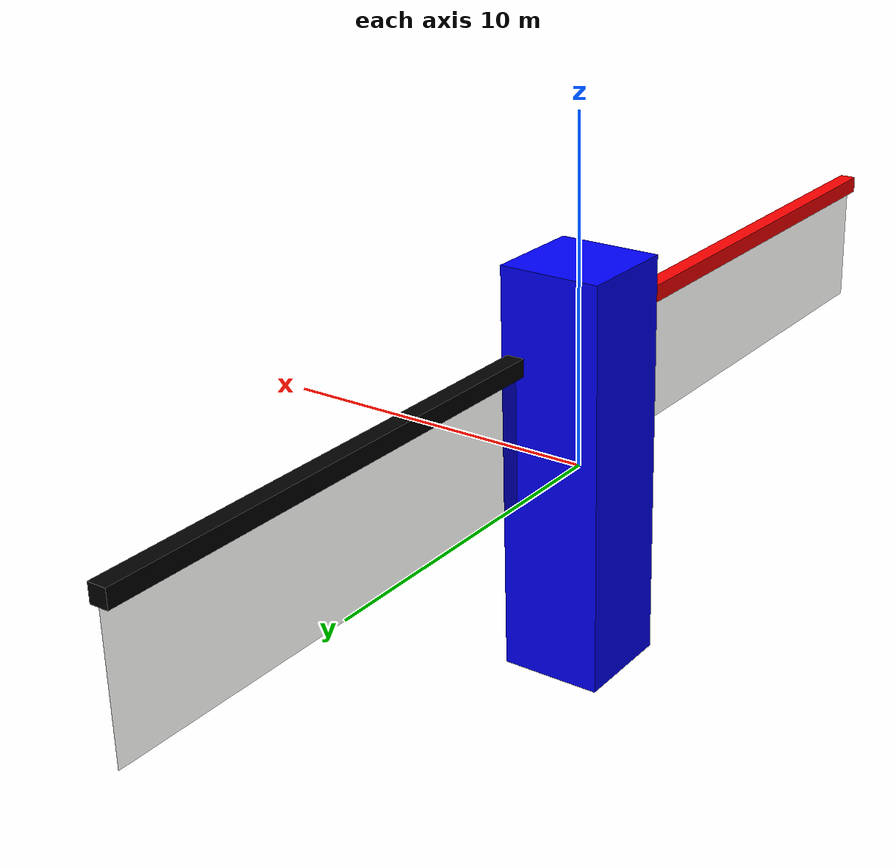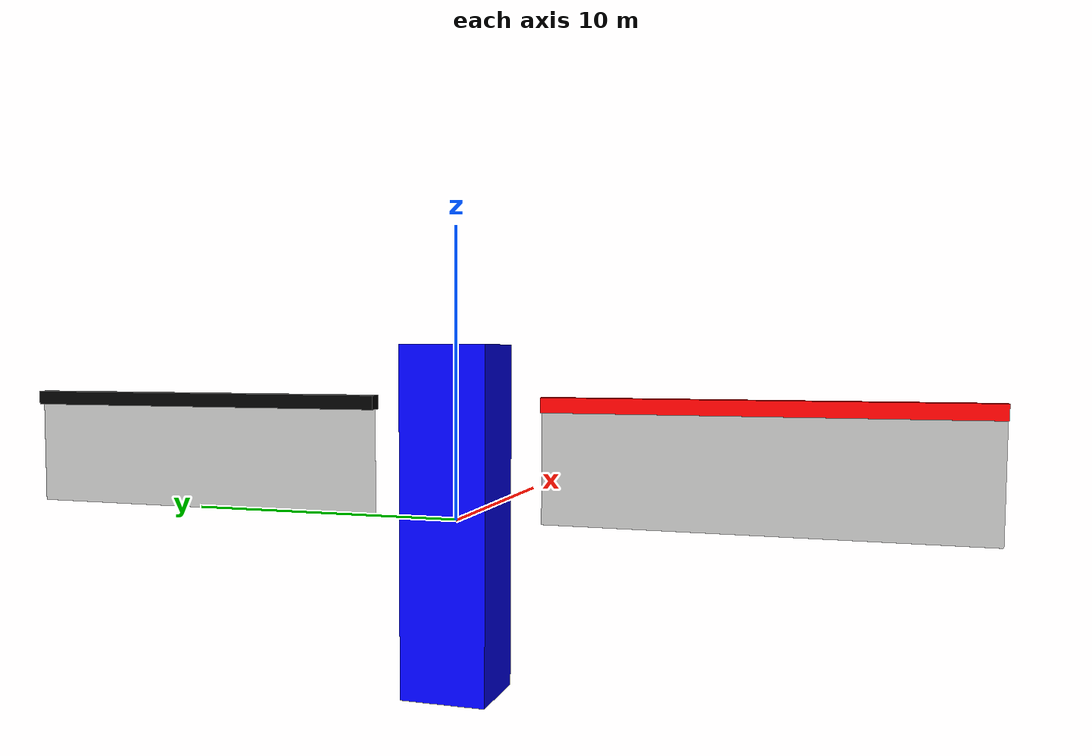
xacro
<?xml version="1.0"?>
<!--
Units: m, kg
Author: Avik De
-->

<robot xmlns:xacro="http://www.ros.org/wiki/xacro" name="sdab">

	<!-- Define parameters -->
	<xacro:property name="pi" value="3.14159265359"/>
	<xacro:property name="wbody" value="3"/>
	<xacro:property name="lbody" value="12"/>
	<!-- vertical offset of wing attachment point from COM -->
	<xacro:property name="d" value="4"/>
	<!-- inertial properties -->
	<xacro:property name="mb" value="100"/>
	<xacro:property name="ixx" value="3333"/>
	<xacro:property name="iyy" value="3333"/>
	<xacro:property name="izz" value="1000"/>
	<!-- See the mathematica file for how these were tuned to approximately match Jafferis (2016) -->
	<xacro:property name="cbar" value="4"/>
	<xacro:property name="dspar" value="0.5"/>
	<!-- radial wing length *without the wing root offset*. Lw=Rwing+Rwingoffset -->
	<!-- radial distance from center to start of wing -->
	<xacro:property name="RwingOffset" value="3"/>
	<xacro:property name="Rwing" value="14"/>
	<xacro:property name="tmem" value="0.0015"/>
	<xacro:property name="sparInertial">
		<mass value="0.72"/>
		<inertia ixx="0.03" ixy="0" ixz="0" iyy="11.775" iyz="0" izz="11.775" />
	</xacro:property>
	<xacro:property name="memInertial">
		<mass value="0.06"/>
		<inertia ixx="0.08" ixy="0.0" ixz="0.0" iyy="1.06" iyz="0.0" izz="0.981" />
	</xacro:property>
	<!-- Stiffness and damping properties -->
	<xacro:property name="khinge" value="3"/>
	<xacro:property name="bhinge" value="3"/>
	<xacro:property name="kstroke" value="65"/> <!-- total act = 240/T^2 + 30 -->

	<!-- Define materials -->
	<material name="Black1">
		<color rgba="0 0 0 1.0"/>
	</material>
	<material name="Red1">
		<color rgba="1.0 0 0 1.0"/>
	</material>
	<material name="Gray1">
		<color rgba="0 0 0 0.3"/>
	</material>
	<material name="Blue1">
		<color rgba="0 0 1 1.0"/>
	</material>

	<!-- Body -->
	<link name="body">
		<visual>
			<origin xyz="0 0 0.0" rpy="0 0 0"/>
			<geometry>
				<box size="${wbody} ${wbody} ${lbody}"/>
			</geometry>
			<material name="Blue1"/>
		 </visual>
		<inertial>
			<mass value="${mb}"/>
			<inertia ixx="${ixx}" ixy="0.0" ixz="0.0" iyy="${iyy}" iyz="0.0" izz="${izz}"/>
		</inertial>
	</link>

	<!-- Define our wing macro -->
	<xacro:macro name="wing" params="sign prefix sparcol">
		<link name="${prefix}wing_spar">
			<visual>
				<origin xyz="0 ${sign*(0.5*Rwing)} 0.0" rpy="0 0 ${sign*0.5*pi}"/>
				<geometry>
					<box size="${Rwing} ${dspar} ${dspar}"/>
				</geometry>
				<material name="${sparcol}"/>
			</visual>
		<inertial>
			<origin xyz="0 ${sign*(0.5*Rwing)} 0.0" rpy="0 0 ${sign*0.5*pi}"/>
			<xacro:insert_block name="sparInertial" />
		</inertial>
		<!-- pybullet does not expose spring_stiffness but does expose these so add them here too. We are not expecting contact -->
		<contact>
			<stiffness value="${kstroke}"/>
			<damping value="0"/>
		</contact>
		</link>

		<link name="${prefix}wing_membrane">
			<visual>
				<origin xyz="0 ${sign*(0.5*Rwing)} ${-0.5 * cbar}" rpy="0 0 ${sign*0.5*pi}"/>
				<geometry>
					<box size="${Rwing} ${tmem} ${cbar}"/>
				</geometry>
				<material name="Gray1"/>
			</visual>
		<inertial>
			<origin xyz="0 ${sign*(0.5*Rwing)} ${-0.5 * cbar}" rpy="0 0 ${sign*0.5*pi}"/>
			<xacro:insert_block name="memInertial" />
		</inertial>
		<!-- pybullet does not expose spring_stiffness but does expose these so add them here too. We are not expecting contact -->
		<contact>
			<stiffness value="${khinge}"/>
			<damping value="${bhinge}"/>
		</contact>
		</link>

		<!-- * * * Joint Definitions * * * -->

		<joint name="${prefix}wing_stroke" type="continuous">
			<parent link="body"/>
			<child link="${prefix}wing_spar"/>
			<axis xyz="0 0 ${sign}"/>
			<origin xyz="0.0 ${sign*RwingOffset} ${d}" rpy="0 0 0"/>
		</joint>

		<joint name="${prefix}wing_hinge" type="continuous">
			<parent link="${prefix}wing_spar"/>
			<child link="${prefix}wing_membrane"/>
			<axis xyz="0 ${sign} 0"/>
			<origin xyz="0.0 0 0.0" rpy="0 0 0"/>
		</joint>

	</xacro:macro>

	<!-- Two wings -->
	<xacro:wing sign="1" prefix="l" sparcol="Black1"/>
	<xacro:wing sign="-1" prefix="r" sparcol="Red1"/>
</robot>
